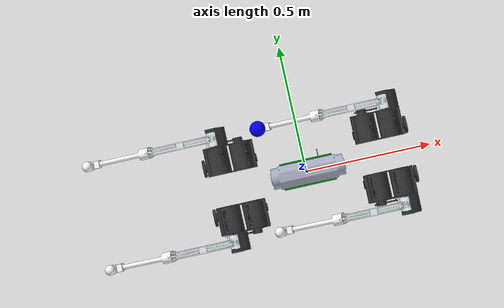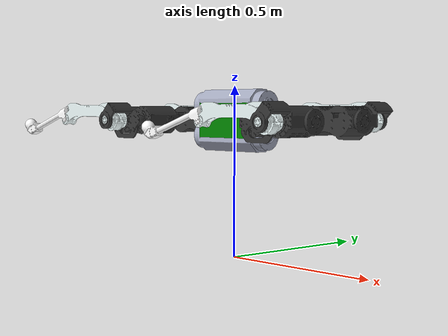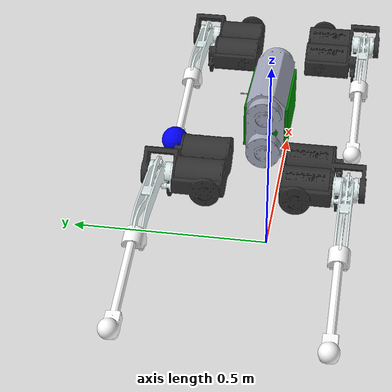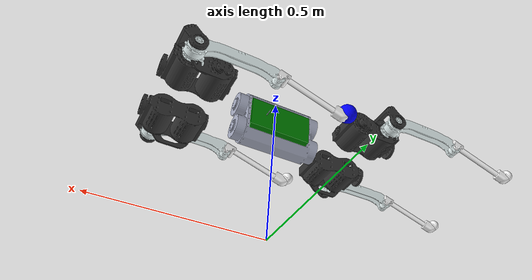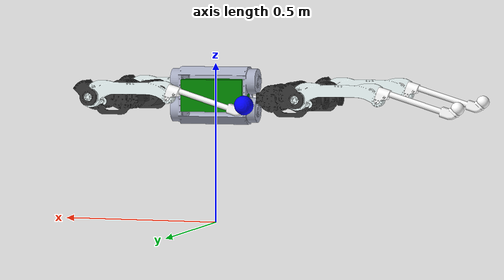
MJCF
<mujoco model="quadrupedMCL">
  <compiler angle="radian" meshdir="assets/meshes/"/>

  <option timestep="0.0001" integrator="RK4" gravity = "0 0 -9.81" cone="elliptic" impratio="100">
    <flag sensornoise="enable" energy="enable" contact="enable" />
  </option>

  <default>
    <default class="quadrupedMCL">
      <geom friction="0.6" margin="0.001" condim="1"/>
      <joint axis="0 0 -1" armature="0.05" damping="2" stiffness="0" frictionloss="0.1"/>

      <default class="abduction">
        <joint axis="1 0 0" range="-1.0472 1.0472"/>
      </default>

      <default class="hip">
        <joint range="-0.2 3.14"/>
      </default>

      <default class="knee">
        <joint range="-0.2 2.8"/>
      </default>

      <default class="visual">
        <geom type="mesh" contype="0" conaffinity="0" group="2"/>
      </default>

      <default class="collision">
        <geom group="3" type="capsule"/>
        <default class="foot">
          <geom size="0.022" pos="-0.002 0 -0.213" priority="1" solimp="0.015 1 0.031" condim="6" friction="0.8 0.02 0.01"/>
        </default>
      </default>
    </default>
  </default>

  <asset>
    <material name="dark" rgba="0.2 0.2 0.2 1" />
    <material name="metal" rgba=".9 .95 .95 1"/>
    <material name="black" rgba="0 0 0 1"/>
    <material name="white" rgba="1 1 1 1"/>
    <material name="gray" rgba="0.671705 0.692426 0.774270 1"/>

    <mesh name="trunk" file="trunk.STL" />
    <mesh name="torso_FL" file="torso_FL.STL" />
    <mesh name="thigh_FL" file="thigh_FL.STL" />
    <mesh name="shank_FL" file="shank_FL.STL" />
    <mesh name="torso_FR" file="torso_FR.STL" />
    <mesh name="thigh_FR" file="thigh_FR.STL" />
    <mesh name="shank_FR" file="shank_FR.STL" />
    <mesh name="torso_RL" file="torso_RL.STL" />
    <mesh name="thigh_RL" file="thigh_RL.STL" />
    <mesh name="shank_RL" file="shank_RL.STL" />
    <mesh name="torso_RR" file="torso_RR.STL" />
    <mesh name="thigh_RR" file="thigh_RR.STL" />
    <mesh name="shank_RR" file="shank_RR.STL" />
  </asset>

  <worldbody>
    <light diffuse=".5 .5 .5" pos="0 0 3" dir="0 0 -1"/>
    <body name="trunk" pos="0 0 0.4" euler="-1.57 0 0">
      <inertial pos="0 0 0" euler="0 0 0" mass="28" diaginertia="0.1619 1.1622 1.0325"/>
      <freejoint/>
      <site type="box" name="imu" pos="0 0 0" size="0.1 0.05 0.05" rgba="0 0.5 0 1" />

      <geom type="mesh" mesh="trunk" material="gray" class="visual" />
      <geom type="box" size="0.414 0.0415 0.14" class="collision" />

      <body name="torso_FL" pos="0 0 0" euler="0 0 0">
        <inertial pos="0.3 0 0.12" euler="0 0 0" mass="2.5" diaginertia="0.0040 0.0106 0.0095" />
        <joint name="HAA_FL" class="abduction" pos="0.1958 0 0.095" />
        <geom type="mesh" mesh="torso_FL" material="dark" class="visual" />
        <site type="sphere" name="hip_FL" pos="0.3 0 0.12" size="0.05" rgba="0 0.5 0 0.0" />

        <body name="thigh_FL" pos="0 0 0">
          <inertial pos="0.22 0 0.204" euler="0 0 0" mass="1.017" diaginertia="6.2715e-04 0.0055 0.0057" />
          <joint name="HFE_FL" class="hip" pos="0.3393 0 0.1675"/>
          <geom type="mesh" mesh="thigh_FL" material="metal" class="visual" />
          <geom size="0.025 0.125" pos="0.2143 0 0.2" euler="0 1.57 0" class="collision" />

          <body name="shank_FL" pos="0 0 0">
            <inertial pos="-0.03 0 0.204" euler="0 0 0" mass="0.143" diaginertia="6.3158e-05 7.4956e-04 8.0318e-04" />
            <joint name="KFE_FL" class="knee" pos="0.0893 0 0.17929"/>
            <geom type="mesh" mesh="shank_FL" material="white" contype="1" conaffinity="0" group="2" />

            <site type="sphere" name="foot_FL" pos="-0.151 0.02 0.2" size="0.03" rgba="0 0 1 1" />
          </body>
        </body>
      </body>

      <body name="torso_FR" pos="0 0 0" euler="0 0 0">
        <inertial pos="0.3 0 -0.12" euler="0 0 0" mass="2.5" diaginertia="0.0040 0.0106 0.0095" />
        <joint name="HAA_FR" class="abduction" pos="0.1958 0 -0.095" />
        <geom type="mesh" mesh="torso_FR" material="dark" class="visual" />
        <site type="sphere" name="hip_FR" pos="0.3 0 -0.12" size="0.05" rgba="0 0.5 0 0.0" />

        <body name="thigh_FR" pos="0 0 0">
          <inertial pos="0.22 0 -0.204" euler="0 0 0" mass="1.017" diaginertia="6.2715e-04 0.0055 0.0057" />
          <joint name="HFE_FR" class="hip" pos="0.3393 0 -0.1675"/>
          <geom type="mesh" mesh="thigh_FR" material="metal" class="visual" />
          <geom size="0.02 0.125" pos="0.2143 0 -0.2" euler="0 1.57 0" class="collision" />

          <body name="shank_FR" pos="0 0 0">
            <inertial pos="-0.03 0 -0.204" euler="0 0 0" mass="0.143" diaginertia="6.3158e-05 7.4956e-04 8.0318e-04" />
            <joint name="KFE_FR" class="knee" pos="0.0893 0 -0.17929"/>
            <geom type="mesh" mesh="shank_FR" material="white" contype="1" conaffinity="0" group="2" />

            <site type="sphere" name="foot_FR" pos="-0.151 0.02 -0.2" size="0.03" rgba="0. 0.5 0 0.0" />
          </body>
        </body>
      </body>

      <body name="torso_RL" pos="0 0 0" euler="0 0 0">
        <inertial pos="-0.28 0 0.12" euler="0 0 0" mass="2.5" diaginertia="0.0040 0.0106 0.0095" />
        <joint name="HAA_RL" class="abduction" pos="-0.17717 0 0.095"/>
        <geom type="mesh" mesh="torso_RL" material="dark" class="visual" />
        <site type="sphere" name="hip_RL" pos="-0.28 0 0.12" size="0.05" rgba="0 0.5 0 0.0" />

        <body name="thigh_RL" pos="0 0 0">
          <inertial pos="-0.44 0 0.204" euler="0 0 0" mass="1.017" diaginertia="6.2715e-04 0.0055 0.0057" />
          <joint name="HFE_RL" class="hip" pos="-0.32067 0 0.1675"/>
          <geom type="mesh" mesh="thigh_RL" material="metal" class="visual" />
          <geom size="0.02 0.125" pos="-0.44567 0 0.204" euler="0 1.57 0" class="collision" />

          <body name="shank_RL" pos="0 0 0">
            <inertial pos="-0.69 0 0.204" euler="0 0 0" mass="0.143" diaginertia="6.3158e-05 7.4956e-04 8.0318e-04" />
            <joint name="KFE_RL" class="knee" pos="-0.57067 0 0.17929"/>
            <geom type="mesh" mesh="shank_RL" material="white" contype="1" conaffinity="0" group="2" />

            <site type="sphere" name="foot_RL" pos="-0.811 0.02 0.2" size="0.03" rgba="0. 0.5 0 0.0" />
          </body>
        </body>
      </body>

      <body name="torso_RR" pos="0 0 0" euler="0 0 0">
        <inertial pos="-0.28 0 -0.12" euler="0 0 0" mass="2.5" diaginertia="0.0040 0.0106 0.0095" />
        <joint name="HAA_RR" class="abduction" pos="-0.17717 0 -0.095"/>
        <geom type="mesh" mesh="torso_RR" material="dark" class="visual" />
        <site type="sphere" name="hip_RR" pos="-0.28 0 -0.12" size="0.05" rgba="0 0.5 0 0.0" />

        <body name="thigh_RR" pos="0 0 0">
          <inertial pos="-0.44 0 -0.204" euler="0 0 0" mass="1.017" diaginertia="6.2715e-04 0.0055 0.0057" />
          <joint name="HFE_RR" class="hip" pos="-0.32067 0 -0.1675"/>
          <geom type="mesh" mesh="thigh_RR" material="metal" class="visual" />
          <geom size="0.02 0.125" pos="-0.44567 0 -0.204" euler="0 1.57 0" class="collision" />

          <body name="shank_RR" pos="0 0 0">
            <inertial pos="-0.69 0 -0.204" euler="0 0 0" mass="0.143" diaginertia="6.3158e-05 7.4956e-04 8.0318e-04" />
            <joint name="KFE_RR" class="knee" pos="-0.57067 0 -0.17929"/>
            <geom type="mesh" mesh="shank_RR" material="white" contype="1" conaffinity="0" group="2" />

            <site type="sphere" name="foot_RR" pos="-0.811 0.02 -0.2" size="0.03" rgba="0. 0.5 0 0." />
          </body>
        </body>
      </body>
    </body>
  </worldbody>

  <actuator>
    <motor name="torque_HAA_FL" joint="HAA_FL" gear="1" ctrllimited="true" ctrlrange="-100 100" />
    <motor name="torque_HFE_FL" joint="HFE_FL" gear="1" ctrllimited="true" ctrlrange="-100 100" />
    <motor name="torque_KFE_FL" joint="KFE_FL" gear="1" ctrllimited="true" ctrlrange="-100 100" />
    <motor name="torque_HAA_FR" joint="HAA_FR" gear="1" ctrllimited="true" ctrlrange="-100 100" />
    <motor name="torque_HFE_FR" joint="HFE_FR" gear="1" ctrllimited="true" ctrlrange="-100 100" />
    <motor name="torque_KFE_FR" joint="KFE_FR" gear="1" ctrllimited="true" ctrlrange="-100 100" />
    <motor name="torque_HAA_RL" joint="HAA_RL" gear="1" ctrllimited="true" ctrlrange="-100 100" />
    <motor name="torque_HFE_RL" joint="HFE_RL" gear="1" ctrllimited="true" ctrlrange="-100 100" />
    <motor name="torque_KFE_RL" joint="KFE_RL" gear="1" ctrllimited="true" ctrlrange="-100 100" />
    <motor name="torque_HAA_RR" joint="HAA_RR" gear="1" ctrllimited="true" ctrlrange="-100 100" />
    <motor name="torque_HFE_RR" joint="HFE_RR" gear="1" ctrllimited="true" ctrlrange="-100 100" />
    <motor name="torque_KFE_RR" joint="KFE_RR" gear="1" ctrllimited="true" ctrlrange="-100 100" />
  </actuator>

  <sensor>
    <accelerometer site="imu" name="imu_accl" noise="0.0" />
    <gyro site="imu" name="imu_gyro" noise="0.0" />

    <jointpos joint="HAA_FL" name="ENC_HAA_FL" noise="0.0" />
    <jointpos joint="HFE_FL" name="ENC_HFE_FL" noise="0.0" />
    <jointpos joint="KFE_FL" name="ENC_KFE_FL" noise="0.0" />

    <jointpos joint="HAA_FR" name="ENC_HAA_FR" noise="0.0" />
    <jointpos joint="HFE_FR" name="ENC_HFE_FR" noise="0.0" />
    <jointpos joint="KFE_FR" name="ENC_KFE_FR" noise="0.0" />

    <jointpos joint="HAA_RL" name="ENC_HAA_RL" noise="0.0" />
    <jointpos joint="HFE_RL" name="ENC_HFE_RL" noise="0.0" />
    <jointpos joint="KFE_RL" name="ENC_KFE_RL" noise="0.0" />

    <jointpos joint="HAA_RR" name="ENC_HAA_RR" noise="0.0" />
    <jointpos joint="HFE_RR" name="ENC_HFE_RR" noise="0.0" />
    <jointpos joint="KFE_RR" name="ENC_KFE_RR" noise="0.0" />

    <touch name="touch_sensor_FL" site="foot_FL" />
    <force name="grf_sensor_FL" site="foot_FL" />

    <touch name="touch_sensor_FR" site="foot_FR" />
    <force name="grf_sensor_FR" site="foot_FR" />

    <touch name="touch_sensor_RL" site="foot_RL" />
    <force name="grf_sensor_RL" site="foot_RL" />

    <touch name="touch_sensor_RR" site="foot_RR" />
    <force name="grf_sensor_RR" site="foot_RR" />

    <framelinvel name="trunk_vel" objtype="site" objname="imu" />
    <framepos name="trunk_pos" objtype="site" objname="imu" />
    <framequat name="trunk_quat" objtype="site" objname="imu" />

    <framepos name="FL_pos" objtype="site" objname="foot_FL" />
    <framepos name="FR_pos" objtype="site" objname="foot_FR" />
    <framepos name="RL_pos" objtype="site" objname="foot_RL" />
    <framepos name="RR_pos" objtype="site" objname="foot_RR" />

    <framelinvel name="FL_vel" objtype="site" objname="foot_FL" />
    <framelinvel name="FR_vel" objtype="site" objname="foot_FR" />
    <framelinvel name="RL_vel" objtype="site" objname="foot_RL" />
    <framelinvel name="RR_vel" objtype="site" objname="foot_RR" />

    <frameangvel name="trunk_omega" objtype="site" objname="imu" />

    <framelinvel name="hip_FL_vel" objtype="site" objname="hip_FL" />
    <framelinvel name="hip_FR_vel" objtype="site" objname="hip_FR" />
    <framelinvel name="hip_RL_vel" objtype="site" objname="hip_RL" />
    <framelinvel name="hip_RR_vel" objtype="site" objname="hip_RR" />
  </sensor>

  <keyframe>
    <key name="home" qpos="0. 0. 0.3536 -0.9999 0.9999 0. 0. 0. 0.7854 1.5708 0. 0.7854 1.5708 0. 0.7854 1.5708 0. 0.7854 1.5708" />
  </keyframe>
</mujoco>
